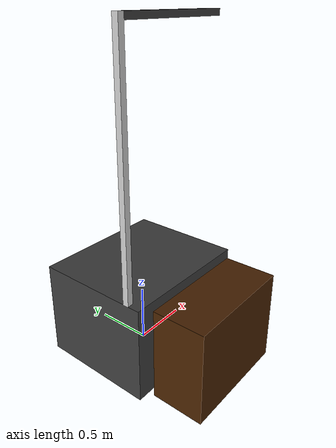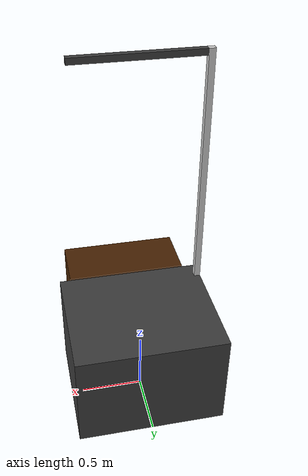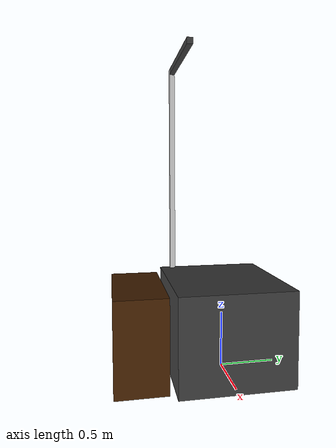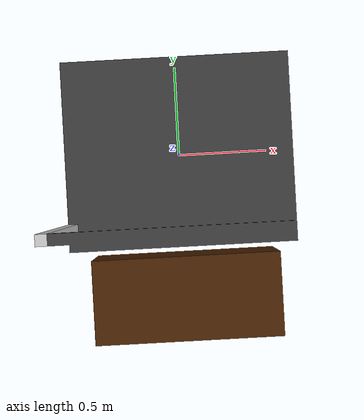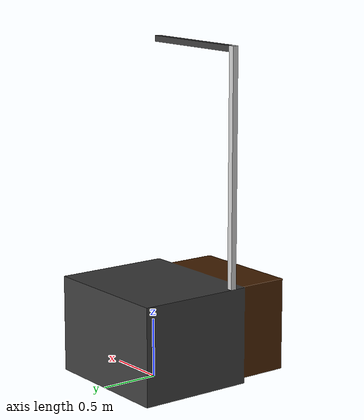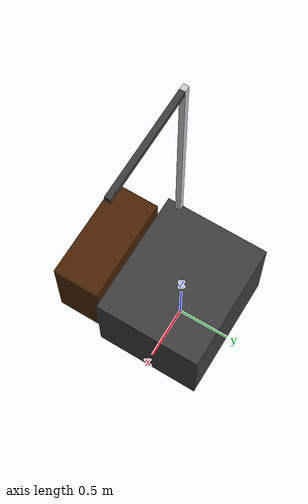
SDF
<?xml version="1.0"?>
<sdf version="1.5">
  <model name="table">
    <link name="link">
    <collision name="collision">
        <geometry>
          <mesh>
            <uri>model://table/meshes/table.dae</uri>
          </mesh>
        </geometry>
      </collision>
      <visual name="visual">
        <cast_shadows>false</cast_shadows>
        <geometry>
          <mesh>
            <uri>model://table/meshes/table.dae</uri>
          </mesh>
        </geometry>
      </visual>
    </link>
  </model>
</sdf>
